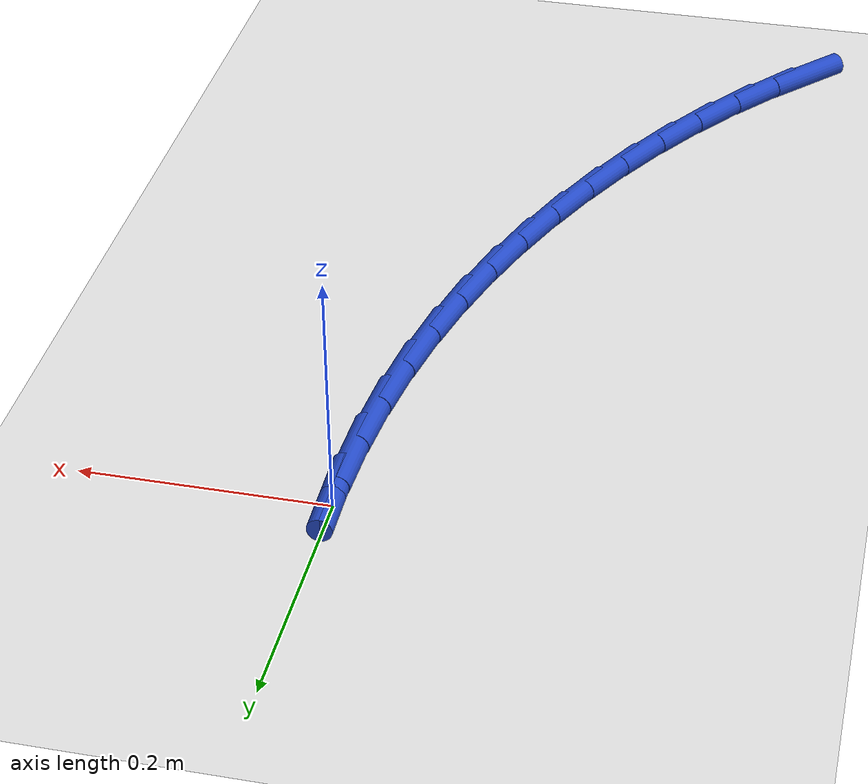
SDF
<sdf version="1.6">
 <world name="default">
  <model name="ground_plane">
   <static>1</static>
   <link name="link">
    <collision name="collision">
     <geometry><plane><normal>0 0 1</normal><size>100 100</size></plane></geometry>
     <surface><friction><ode><mu>100</mu><mu2>50</mu2></ode></friction></surface>
    </collision>
    <visual name="visual">
     <cast_shadows>0</cast_shadows>
     <geometry><plane><normal>0 0 1</normal><size>100 100</size></plane></geometry>
     <material>
      <script><uri>file://media/materials/scripts/gazebo.material</uri><name>Gazebo/WhiteGlow</name></script>
     </material>
    </visual>
   </link>
  </model>
  <model name="line">
   <link name="link_0">
    <pose>5.551115123125783e-17 8.326672684688674e-17 0.01 0 1.57 -1.5558420849791224</pose>
    <collision name="collision">
     <geometry><cylinder><radius>0.01</radius><length>0.08</length></cylinder></geometry>
    </collision>
    <visual name="visual">
     <material>
      <script><name>Gazebo/Blue</name><uri>file://media/materials/scripts/gazebo.material</uri></script>
     </material>
     <geometry><cylinder><radius>0.01</radius><length>0.08</length></cylinder></geometry>
    </visual>
   </link>
   <link name="link_125">
    <pose>-0.2784389035655526 -0.6992950956383799 0.01 0 1.57 0.8266637356834805</pose>
    <collision name="collision">
     <geometry><cylinder><radius>0.01</radius><length>0.08</length></cylinder></geometry>
    </collision>
    <visual name="visual">
     <material>
      <script><name>Gazebo/Blue</name><uri>file://media/materials/scripts/gazebo.material</uri></script>
     </material>
     <geometry><cylinder><radius>0.01</radius><length>0.08</length></cylinder></geometry>
    </visual>
   </link>
   <link name="link_126">
    <pose>-0.24388827494931556 -0.6617684683945769 0.01 0 1.57 0.8895383927137285</pose>
    <collision name="collision">
     <geometry><cylinder><radius>0.01</radius><length>0.08</length></cylinder></geometry>
    </collision>
    <visual name="visual">
     <material>
      <script><name>Gazebo/Blue</name><uri>file://media/materials/scripts/gazebo.material</uri></script>
     </material>
     <geometry><cylinder><radius>0.01</radius><length>0.08</length></cylinder></geometry>
    </visual>
   </link>
   <link name="link_127">
    <pose>-0.21145632747875304 -0.6217657719583939 0.01 0 1.57 0.9477576252507888</pose>
    <collision name="collision">
     <geometry><cylinder><radius>0.01</radius><length>0.08</length></cylinder></geometry>
    </collision>
    <visual name="visual">
     <material>
      <script><name>Gazebo/Blue</name><uri>file://media/materials/scripts/gazebo.material</uri></script>
     </material>
     <geometry><cylinder><radius>0.01</radius><length>0.08</length></cylinder></geometry>
    </visual>
   </link>
   <link name="link_128">
    <pose>-0.18118804986640144 -0.5796391091782764 0.01 0 1.57 1.0020560369475169</pose>
    <collision name="collision">
     <geometry><cylinder><radius>0.01</radius><length>0.08</length></cylinder></geometry>
    </collision>
    <visual name="visual">
     <material>
      <script><name>Gazebo/Blue</name><uri>file://media/materials/scripts/gazebo.material</uri></script>
     </material>
     <geometry><cylinder><radius>0.01</radius><length>0.08</length></cylinder></geometry>
    </visual>
   </link>
   <link name="link_129">
    <pose>-0.15312843082479782 -0.5357405829026715 0.01 0 1.57 1.0531517990904038</pose>
    <collision name="collision">
     <geometry><cylinder><radius>0.01</radius><length>0.08</length></cylinder></geometry>
    </collision>
    <visual name="visual">
     <material>
      <script><name>Gazebo/Blue</name><uri>file://media/materials/scripts/gazebo.material</uri></script>
     </material>
     <geometry><cylinder><radius>0.01</radius><length>0.08</length></cylinder></geometry>
    </visual>
   </link>
   <link name="link_130">
    <pose>-0.1273224590664792 -0.4904222959800257 0.01 0 1.57 1.1017417272024745</pose>
    <collision name="collision">
     <geometry><cylinder><radius>0.01</radius><length>0.08</length></cylinder></geometry>
    </collision>
    <visual name="visual">
     <material>
      <script><name>Gazebo/Blue</name><uri>file://media/materials/scripts/gazebo.material</uri></script>
     </material>
     <geometry><cylinder><radius>0.01</radius><length>0.08</length></cylinder></geometry>
    </visual>
   </link>
   <link name="link_131">
    <pose>-0.10381512330398225 -0.4440363512587848 0.01 0 1.57 1.1486740212394366</pose>
    <collision name="collision">
     <geometry><cylinder><radius>0.01</radius><length>0.08</length></cylinder></geometry>
    </collision>
    <visual name="visual">
     <material>
      <script><name>Gazebo/Blue</name><uri>file://media/materials/scripts/gazebo.material</uri></script>
     </material>
     <geometry><cylinder><radius>0.01</radius><length>0.08</length></cylinder></geometry>
    </visual>
   </link>
   <link name="link_132">
    <pose>-0.08264920488269988 -0.3969088705855421 0.01 0 1.57 1.1957048549171212</pose>
    <collision name="collision">
     <geometry><cylinder><radius>0.01</radius><length>0.08</length></cylinder></geometry>
    </collision>
    <visual name="visual">
     <material>
      <script><name>Gazebo/Blue</name><uri>file://media/materials/scripts/gazebo.material</uri></script>
     </material>
     <geometry><cylinder><radius>0.01</radius><length>0.08</length></cylinder></geometry>
    </visual>
   </link>
   <link name="link_133">
    <pose>-0.06385027403175432 -0.3491633987028638 0.01 0 1.57 1.2434186278460502</pose>
    <collision name="collision">
     <geometry><cylinder><radius>0.01</radius><length>0.08</length></cylinder></geometry>
    </collision>
    <visual name="visual">
     <material>
      <script><name>Gazebo/Blue</name><uri>file://media/materials/scripts/gazebo.material</uri></script>
     </material>
     <geometry><cylinder><radius>0.01</radius><length>0.08</length></cylinder></geometry>
    </visual>
   </link>
   <link name="link_134">
    <pose>-0.04743582124733117 -0.3008283808330974 0.01 0 1.57 1.291701692261112</pose>
    <collision name="collision">
     <geometry><cylinder><radius>0.01</radius><length>0.08</length></cylinder></geometry>
    </collision>
    <visual name="visual">
     <material>
      <script><name>Gazebo/Blue</name><uri>file://media/materials/scripts/gazebo.material</uri></script>
     </material>
     <geometry><cylinder><radius>0.01</radius><length>0.08</length></cylinder></geometry>
    </visual>
   </link>
   <link name="link_135">
    <pose>-0.03342329038768444 -0.2519317132639983 0.01 0 1.57 1.3404250515419058</pose>
    <collision name="collision">
     <geometry><cylinder><radius>0.01</radius><length>0.08</length></cylinder></geometry>
    </collision>
    <visual name="visual">
     <material>
      <script><name>Gazebo/Blue</name><uri>file://media/materials/scripts/gazebo.material</uri></script>
     </material>
     <geometry><cylinder><radius>0.01</radius><length>0.08</length></cylinder></geometry>
    </visual>
   </link>
   <link name="link_136">
    <pose>-0.021830125311068843 -0.20250129228332447 0.01 0 1.57 1.3894499880675288</pose>
    <collision name="collision">
     <geometry><cylinder><radius>0.01</radius><length>0.08</length></cylinder></geometry>
    </collision>
    <visual name="visual">
     <material>
      <script><name>Gazebo/Blue</name><uri>file://media/materials/scripts/gazebo.material</uri></script>
     </material>
     <geometry><cylinder><radius>0.01</radius><length>0.08</length></cylinder></geometry>
    </visual>
   </link>
   <link name="link_137">
    <pose>-0.012673769875738365 -0.1525650141788315 0.01 0 1.57 1.438630633851401</pose>
    <collision name="collision">
     <geometry><cylinder><radius>0.01</radius><length>0.08</length></cylinder></geometry>
    </collision>
    <visual name="visual">
     <material>
      <script><name>Gazebo/Blue</name><uri>file://media/materials/scripts/gazebo.material</uri></script>
     </material>
     <geometry><cylinder><radius>0.01</radius><length>0.08</length></cylinder></geometry>
    </visual>
   </link>
   <link name="link_138">
    <pose>-0.005971667939947227 -0.10215077523827568 0.01 0 1.57 1.4878169045727252</pose>
    <collision name="collision">
     <geometry><cylinder><radius>0.01</radius><length>0.08</length></cylinder></geometry>
    </collision>
    <visual name="visual">
     <material>
      <script><name>Gazebo/Blue</name><uri>file://media/materials/scripts/gazebo.material</uri></script>
     </material>
     <geometry><cylinder><radius>0.01</radius><length>0.08</length></cylinder></geometry>
    </visual>
   </link>
   <link name="link_139">
    <pose>-0.0017412633619496819 -0.05128647174941334 0.01 0 1.57 1.5368576544169117</pose>
    <collision name="collision">
     <geometry><cylinder><radius>0.01</radius><length>0.08</length></cylinder></geometry>
    </collision>
    <visual name="visual">
     <material>
      <script><name>Gazebo/Blue</name><uri>file://media/materials/scripts/gazebo.material</uri></script>
     </material>
     <geometry><cylinder><radius>0.01</radius><length>0.08</length></cylinder></geometry>
    </visual>
   </link>
   <link name="link_140">
    <pose>4.85722573273506e-17 -1.3877787807814457e-17 0.01 0 1.57 -1.5559887655908955</pose>
    <collision name="collision">
     <geometry><cylinder><radius>0.01</radius><length>0.08</length></cylinder></geometry>
    </collision>
    <visual name="visual">
     <material>
      <script><name>Gazebo/Blue</name><uri>file://media/materials/scripts/gazebo.material</uri></script>
     </material>
     <geometry><cylinder><radius>0.01</radius><length>0.08</length></cylinder></geometry>
    </visual>
   </link>
  </model>
 </world>
</sdf>
